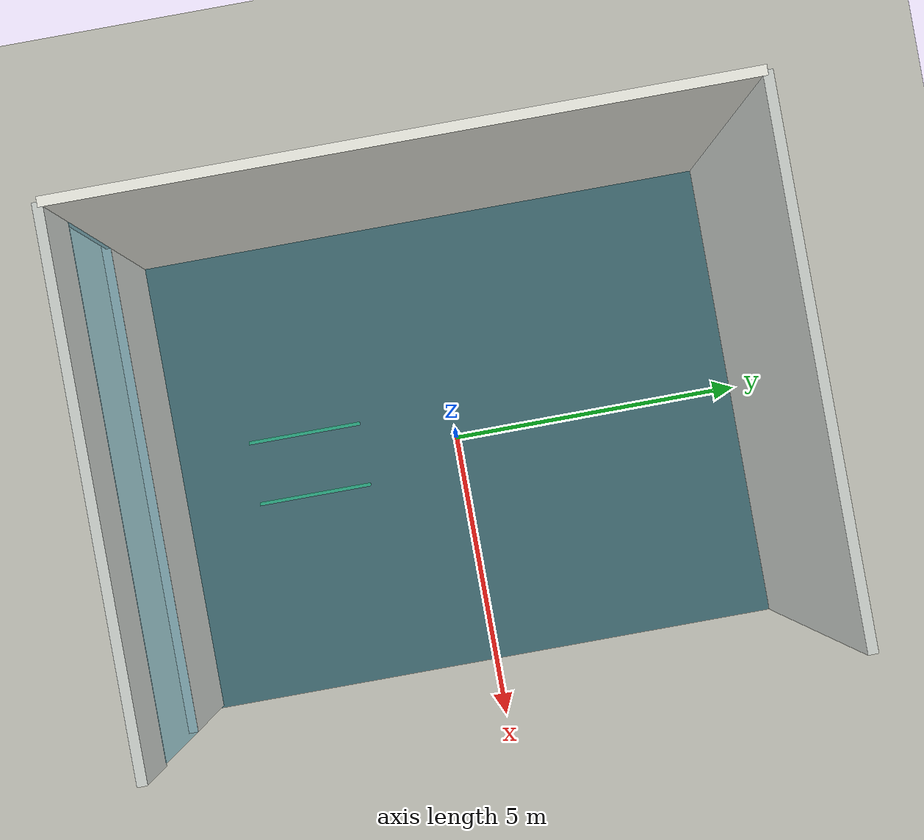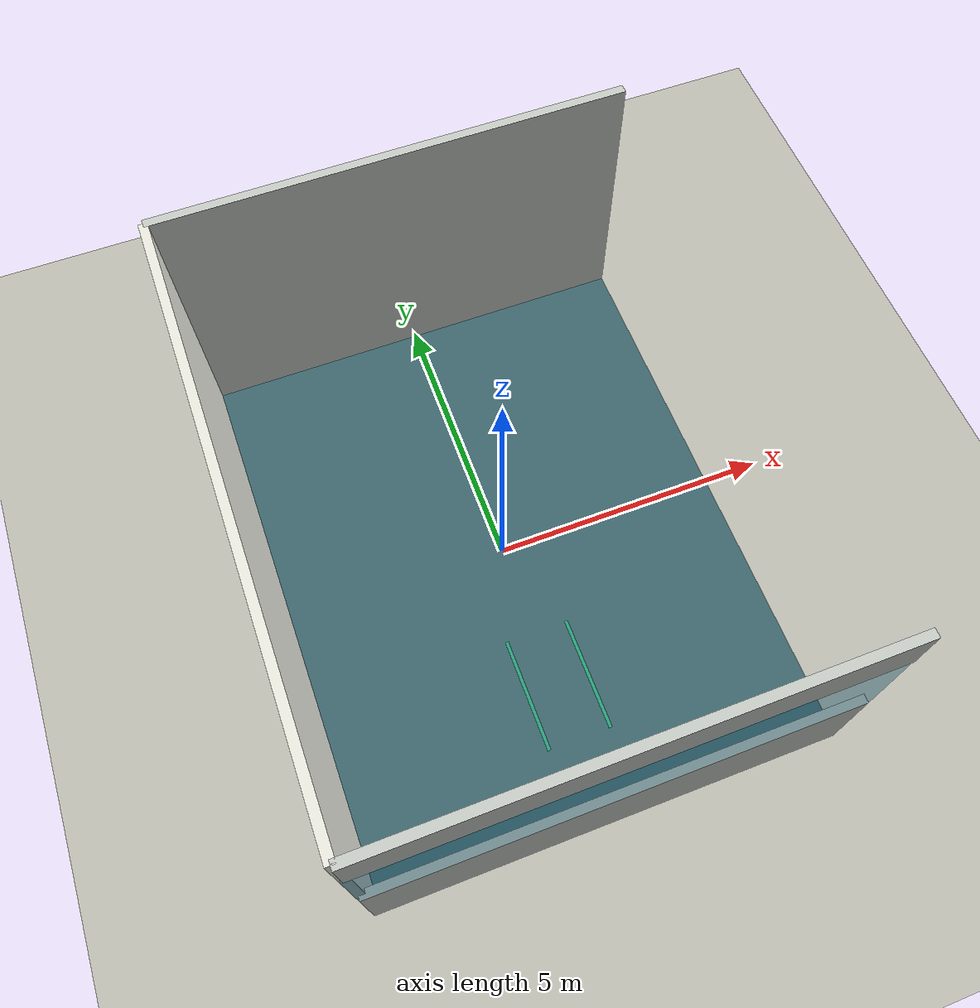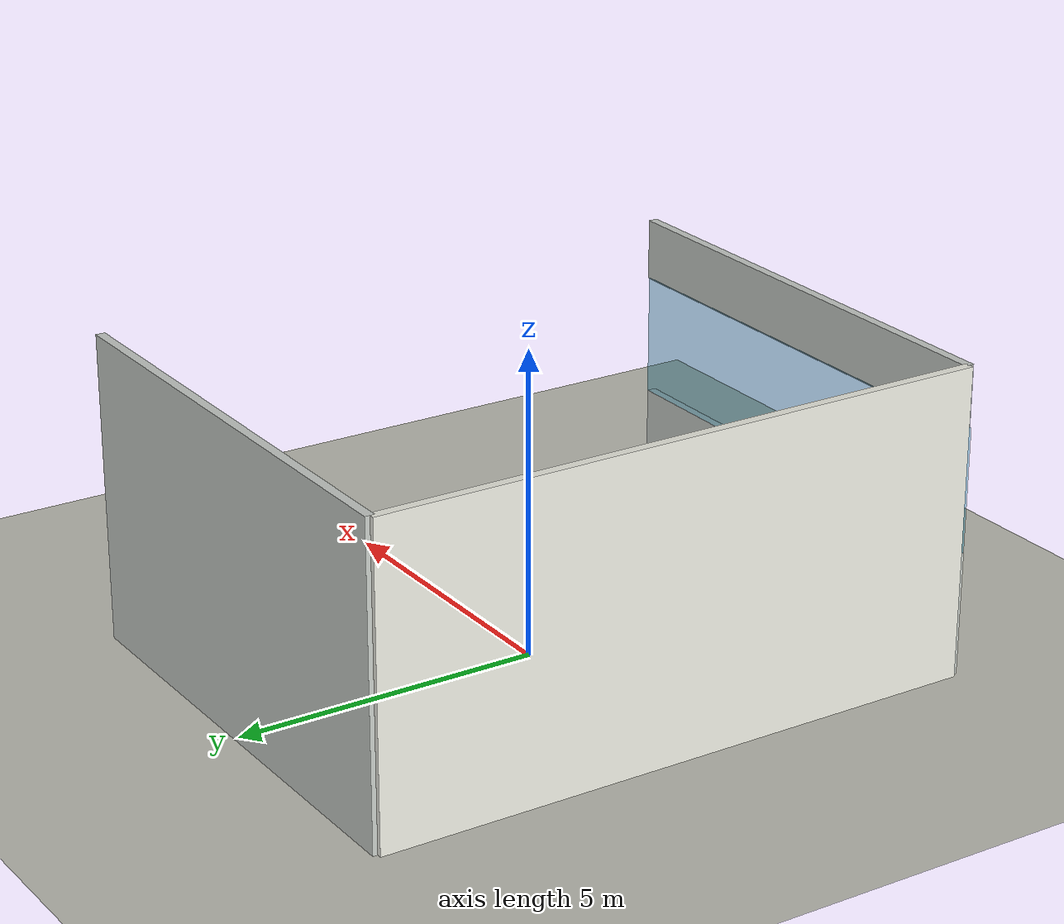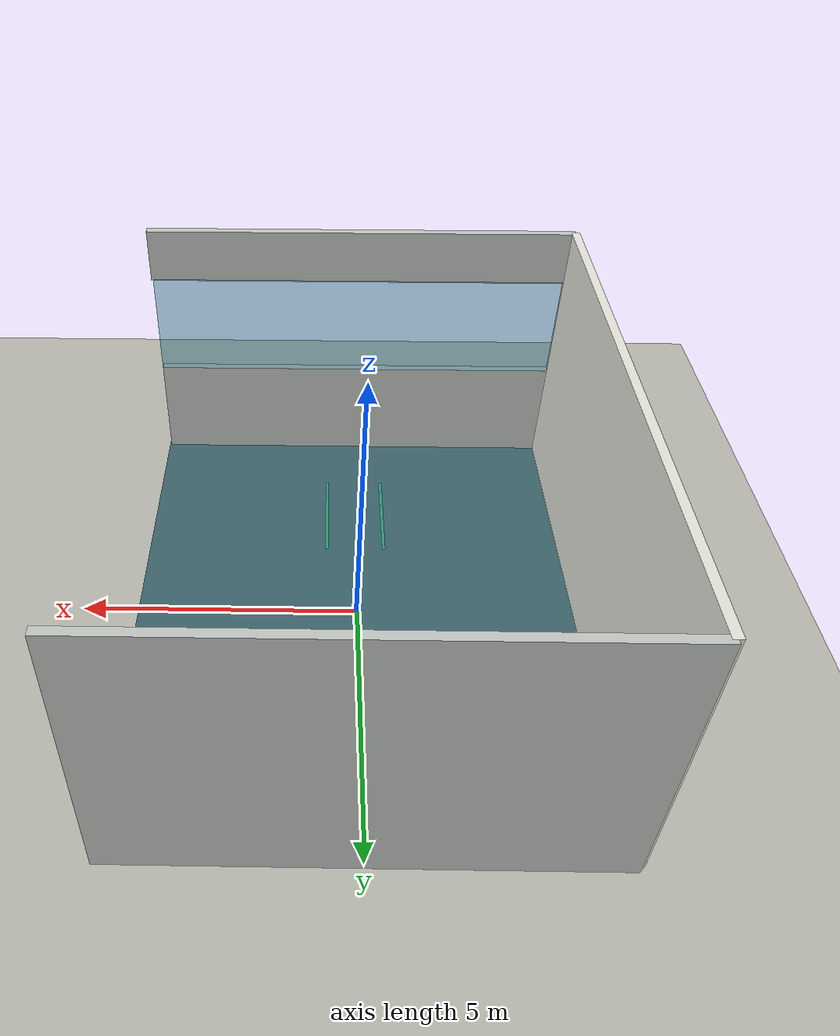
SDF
<sdf version="1.9">
 <world name="laboratory_landingbox_hitl">
  <model name="ground_plane">
   <static>true</static>
   <link name="link">
    <collision name="collision">
     <geometry><plane><normal>0 0 1</normal><size>500 500</size></plane></geometry>
     <surface><friction><ode><mu>100</mu><mu2>50</mu2></ode></friction></surface>
    </collision>
    <visual name="visual">
     <geometry><plane><normal>0 0 1</normal><size>500 500</size></plane></geometry>
     <material>
      <ambient>0.74 0.74 0.70 1</ambient>
      <diffuse>0.74 0.74 0.70 1</diffuse>
      <specular>0.05 0.05 0.05 1</specular>
     </material>
    </visual>
    <inertial>
     <mass>1</mass>
     <inertia><ixx>1</ixx><ixy>0</ixy><ixz>0</ixz><iyy>1</iyy><iyz>0</iyz><izz>1</izz></inertia>
    </inertial>
   </link>
  </model>
  <model name="window">
   <link name="link_2">
    <pose>-3.65586 -0.020997 0.361529 0 -0 0</pose>
    <inertial>
     <mass>1</mass>
     <inertia><ixx>1</ixx><ixy>0</ixy><ixz>0</ixz><iyy>1</iyy><iyz>0</iyz><izz>1</izz></inertia>
    </inertial>
    <visual name="visual">
     <pose>0 0 0.9 0 -0 0</pose>
     <geometry><box><size>8 0.15 2</size></box></geometry>
     <material>
      <lighting>true</lighting>
      <ambient>0.20 0.50 0.60 0.7</ambient>
      <diffuse>0.22 0.62 0.75 0.7</diffuse>
      <specular>0.18 0.18 0.18 1</specular>
      <emissive>0.02 0.06 0.08 1</emissive>
     </material>
     <transparency>0.55</transparency>
    </visual>
    <collision name="collision">
     <pose>0 0 0.9 0 -0 0</pose>
     <geometry><box><size>8 0.15 2</size></box></geometry>
     <surface>
      <friction>
       <ode><mu>1</mu><mu2>1</mu2><fdir1>0 0 0</fdir1><slip1>0</slip1><slip2>0</slip2></ode>
       <torsional>
        <coefficient>1</coefficient>
        <patch_radius>0</patch_radius>
        <surface_radius>0</surface_radius>
        <use_patch_radius>1</use_patch_radius>
        <ode><slip>0</slip></ode>
       </torsional>
      </friction>
      <bounce><restitution_coefficient>0</restitution_coefficient><threshold>1e+06</threshold></bounce>
      <contact>
       <collide_without_contact>0</collide_without_contact>
       <collide_without_contact_bitmask>1</collide_without_contact_bitmask>
       <collide_bitmask>1</collide_bitmask>
       <ode>
        <soft_cfm>0</soft_cfm>
        <soft_erp>0.2</soft_erp>
        <kp>1e+13</kp>
        <kd>1</kd>
        <max_vel>0.01</max_vel>
        <min_depth>0</min_depth>
       </ode>
       <bullet>
        <split_impulse>1</split_impulse>
        <split_impulse_penetration_threshold>-0.01</split_impulse_penetration_threshold>
        <soft_cfm>0</soft_cfm>
        <soft_erp>0.2</soft_erp>
        <kp>1e+13</kp>
        <kd>1</kd>
       </bullet>
      </contact>
     </surface>
    </collision>
   </link>
   <static>true</static>
   <pose>3.62277 -4.97689 1.7565 0 -0 0</pose>
  </model>
  <model name="Workshop">
   <link name="Wall_10">
    <pose>-2.5053 2.09449 2 0 0 -1.5708</pose>
    <inertial>
     <mass>1</mass>
     <inertia><ixx>1</ixx><ixy>0</ixy><ixz>0</ixz><iyy>1</iyy><iyz>0</iyz><izz>1</izz></inertia>
    </inertial>
    <visual name="Wall_10_Visual">
     <pose>0 0 0.5 0 -0 0</pose>
     <geometry><box><size>10 0.15 5</size></box></geometry>
     <material>
      <ambient>0.88 0.88 0.84 1</ambient>
      <diffuse>0.92 0.92 0.88 1</diffuse>
      <specular>0.02 0.02 0.02 1</specular>
      <emissive>0 0 0 1</emissive>
     </material>
    </visual>
    <collision name="Wall_10_Collision">
     <pose>0 0 0.5 0 -0 0</pose>
     <geometry><box><size>10 0.15 5</size></box></geometry>
     <surface>
      <friction>
       <ode><mu>1</mu><mu2>1</mu2><fdir1>0 0 0</fdir1><slip1>0</slip1><slip2>0</slip2></ode>
       <torsional>
        <coefficient>1</coefficient>
        <patch_radius>0</patch_radius>
        <surface_radius>0</surface_radius>
        <use_patch_radius>1</use_patch_radius>
        <ode><slip>0</slip></ode>
       </torsional>
      </friction>
      <bounce><restitution_coefficient>0</restitution_coefficient><threshold>1e+06</threshold></bounce>
      <contact>
       <collide_without_contact>0</collide_without_contact>
       <collide_without_contact_bitmask>1</collide_without_contact_bitmask>
       <collide_bitmask>1</collide_bitmask>
       <ode>
        <soft_cfm>0</soft_cfm>
        <soft_erp>0.2</soft_erp>
        <kp>1e+13</kp>
        <kd>1</kd>
        <max_vel>0.01</max_vel>
        <min_depth>0</min_depth>
       </ode>
       <bullet>
        <split_impulse>1</split_impulse>
        <split_impulse_penetration_threshold>-0.01</split_impulse_penetration_threshold>
        <soft_cfm>0</soft_cfm>
        <soft_erp>0.2</soft_erp>
        <kp>1e+13</kp>
        <kd>1</kd>
       </bullet>
      </contact>
     </surface>
    </collision>
   </link>
   <link name="Wall_11">
    <pose>1.46131 -2.90507 0.516113 0 -0 3.14159</pose>
    <inertial>
     <inertia><ixx>1</ixx><ixy>0</ixy><ixz>0</ixz><iyy>1</iyy><iyz>0</iyz><izz>1</izz></inertia>
     <mass>1</mass>
    </inertial>
    <visual name="Wall_11_Visual">
     <pose>0 0 0.5 0 -0 0</pose>
     <geometry><box><size>8 0.15 2</size></box></geometry>
     <material>
      <ambient>0.72 0.74 0.72 1</ambient>
      <emissive>0 0 0 1</emissive>
      <diffuse>0.78 0.80 0.78 1</diffuse>
      <specular>0.02 0.02 0.02 1</specular>
     </material>
    </visual>
    <collision name="Wall_11_Collision">
     <pose>0 0 0.5 0 -0 0</pose>
     <geometry><box><size>8 0.15 2</size></box></geometry>
     <surface>
      <friction>
       <ode><mu>1</mu><mu2>1</mu2><fdir1>0 0 0</fdir1><slip1>0</slip1><slip2>0</slip2></ode>
       <torsional>
        <coefficient>1</coefficient>
        <patch_radius>0</patch_radius>
        <surface_radius>0</surface_radius>
        <use_patch_radius>1</use_patch_radius>
        <ode><slip>0</slip></ode>
       </torsional>
      </friction>
      <bounce><restitution_coefficient>0</restitution_coefficient><threshold>1e+06</threshold></bounce>
      <contact>
       <collide_without_contact>0</collide_without_contact>
       <collide_without_contact_bitmask>1</collide_without_contact_bitmask>
       <collide_bitmask>1</collide_bitmask>
       <ode>
        <soft_cfm>0</soft_cfm>
        <soft_erp>0.2</soft_erp>
        <kp>1e+13</kp>
        <kd>1</kd>
        <max_vel>0.01</max_vel>
        <min_depth>0</min_depth>
       </ode>
       <bullet>
        <split_impulse>1</split_impulse>
        <split_impulse_penetration_threshold>-0.01</split_impulse_penetration_threshold>
        <soft_cfm>0</soft_cfm>
        <soft_erp>0.2</soft_erp>
        <kp>1e+13</kp>
        <kd>1</kd>
       </bullet>
      </contact>
     </surface>
    </collision>
   </link>
   <link name="Wall_11_clone">
    <pose>1.4947 -2.90551 4 0 -0 3.14159</pose>
    <inertial>
     <inertia><ixx>1</ixx><ixy>0</ixy><ixz>0</ixz><iyy>1</iyy><iyz>0</iyz><izz>1</izz></inertia>
     <mass>1</mass>
    </inertial>
    <visual name="Wall_11_Visual">
     <pose>0 0 0.5 0 -0 0</pose>
     <geometry><box><size>8 0.15 1</size></box></geometry>
     <material>
      <ambient>0.72 0.74 0.72 1</ambient>
      <emissive>0 0 0 1</emissive>
      <diffuse>0.78 0.80 0.78 1</diffuse>
      <specular>0.02 0.02 0.02 1</specular>
     </material>
    </visual>
    <collision name="Wall_11_Collision">
     <pose>0 0 0.5 0 -0 0</pose>
     <geometry><box><size>7.71217 0.15 1</size></box></geometry>
     <surface>
      <friction>
       <ode><mu>1</mu><mu2>1</mu2><fdir1>0 0 0</fdir1><slip1>0</slip1><slip2>0</slip2></ode>
       <torsional>
        <coefficient>1</coefficient>
        <patch_radius>0</patch_radius>
        <surface_radius>0</surface_radius>
        <use_patch_radius>1</use_patch_radius>
        <ode><slip>0</slip></ode>
       </torsional>
      </friction>
      <bounce><restitution_coefficient>0</restitution_coefficient><threshold>1e+06</threshold></bounce>
      <contact>
       <collide_without_contact>0</collide_without_contact>
       <collide_without_contact_bitmask>1</collide_without_contact_bitmask>
       <collide_bitmask>1</collide_bitmask>
       <ode>
        <soft_cfm>0</soft_cfm>
        <soft_erp>0.2</soft_erp>
        <kp>1e+13</kp>
        <kd>1</kd>
        <max_vel>0.01</max_vel>
        <min_depth>0</min_depth>
       </ode>
       <bullet>
        <split_impulse>1</split_impulse>
        <split_impulse_penetration_threshold>-0.01</split_impulse_penetration_threshold>
        <soft_cfm>0</soft_cfm>
        <soft_erp>0.2</soft_erp>
        <kp>1e+13</kp>
        <kd>1</kd>
       </bullet>
      </contact>
     </surface>
    </collision>
   </link>
   <link name="Wall_13">
    <pose>1.4947 7.09449 2 0 -0 3.14159</pose>
    <inertial>
     <mass>1</mass>
     <inertia><ixx>1</ixx><ixy>0</ixy><ixz>0</ixz><iyy>1</iyy><iyz>0</iyz><izz>1</izz></inertia>
    </inertial>
    <visual name="Wall_13_Visual">
     <pose>0 0 0.5 0 -0 0</pose>
     <geometry><box><size>8 0.15 5</size></box></geometry>
     <material>
      <ambient>0.72 0.74 0.72 1</ambient>
      <diffuse>0.78 0.80 0.78 1</diffuse>
      <specular>0.02 0.02 0.02 1</specular>
      <emissive>0 0 0 1</emissive>
     </material>
    </visual>
    <collision name="Wall_13_Collision">
     <pose>0 0 0.5 0 -0 0</pose>
     <geometry><box><size>8 0.15 5</size></box></geometry>
     <surface>
      <friction>
       <ode><mu>1</mu><mu2>1</mu2><fdir1>0 0 0</fdir1><slip1>0</slip1><slip2>0</slip2></ode>
       <torsional>
        <coefficient>1</coefficient>
        <patch_radius>0</patch_radius>
        <surface_radius>0</surface_radius>
        <use_patch_radius>1</use_patch_radius>
        <ode><slip>0</slip></ode>
       </torsional>
      </friction>
      <bounce><restitution_coefficient>0</restitution_coefficient><threshold>1e+06</threshold></bounce>
      <contact>
       <collide_without_contact>0</collide_without_contact>
       <collide_without_contact_bitmask>1</collide_without_contact_bitmask>
       <collide_bitmask>1</collide_bitmask>
       <ode>
        <soft_cfm>0</soft_cfm>
        <soft_erp>0.2</soft_erp>
        <kp>1e+13</kp>
        <kd>1</kd>
        <max_vel>0.01</max_vel>
        <min_depth>0</min_depth>
       </ode>
       <bullet>
        <split_impulse>1</split_impulse>
        <split_impulse_penetration_threshold>-0.01</split_impulse_penetration_threshold>
        <soft_cfm>0</soft_cfm>
        <soft_erp>0.2</soft_erp>
        <kp>1e+13</kp>
        <kd>1</kd>
       </bullet>
      </contact>
     </surface>
    </collision>
   </link>
   <link name="link_0">
    <inertial>
     <mass>1</mass>
     <inertia>
      <ixx>0.166667</ixx>
      <ixy>0</ixy>
      <ixz>0</ixz>
      <iyy>0.166667</iyy>
      <iyz>0</iyz>
      <izz>0.166667</izz>
     </inertia>
    </inertial>
    <pose>1.49282 2.06191 0.012848 0 0 -1.5708</pose>
    <visual name="visual">
     <geometry><box><size>10 8 0.013</size></box></geometry>
     <material>
      <lighting>1</lighting>
      <ambient>0.20 0.33 0.36 1</ambient>
      <diffuse>0.24 0.40 0.43 1</diffuse>
      <specular>0.02 0.02 0.02 1</specular>
      <emissive>0 0 0 1</emissive>
     </material>
    </visual>
    <collision name="collision"><geometry><box><size>10 8 0.013</size></box></geometry></collision>
   </link>
   <static>true</static>
   <pose>-1.4947 -2.09449 0 0 -0 0</pose>
  </model>
  <model name="clearance_lane_left">
   <static>true</static>
   <pose>-0.55 -2.65 0.026 0 0 0</pose>
   <link name="link">
    <visual name="visual">
     <geometry><box><size>0.06 2.0 0.005</size></box></geometry>
     <material>
      <ambient>0.18 0.75 0.55 1</ambient>
      <diffuse>0.18 0.75 0.55 1</diffuse>
      <specular>0.02 0.02 0.02 1</specular>
     </material>
     <transparency>0.25</transparency>
     <cast_shadows>false</cast_shadows>
    </visual>
   </link>
  </model>
  <model name="clearance_lane_right">
   <static>true</static>
   <pose>0.55 -2.65 0.026 0 0 0</pose>
   <link name="link">
    <visual name="visual">
     <geometry><box><size>0.06 2.0 0.005</size></box></geometry>
     <material>
      <ambient>0.18 0.75 0.55 1</ambient>
      <diffuse>0.18 0.75 0.55 1</diffuse>
      <specular>0.02 0.02 0.02 1</specular>
     </material>
     <transparency>0.25</transparency>
     <cast_shadows>false</cast_shadows>
    </visual>
   </link>
  </model>
 </world>
</sdf>
